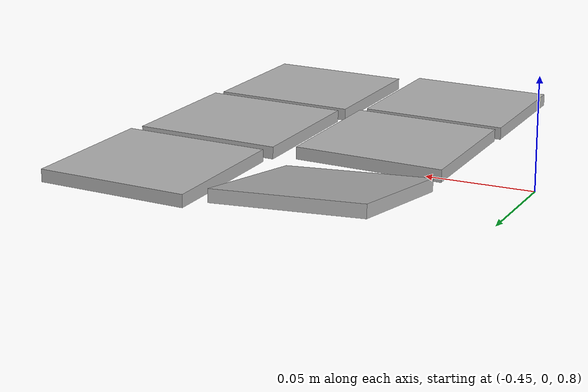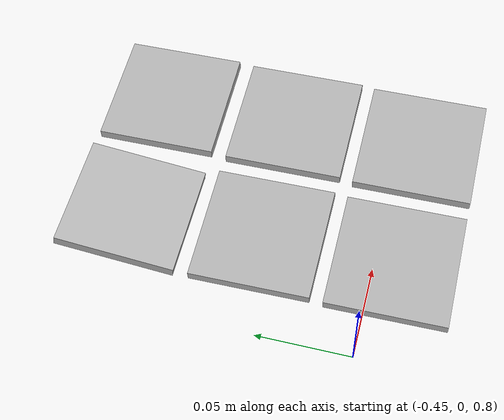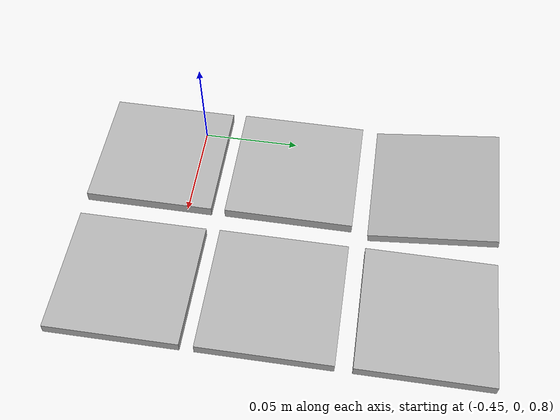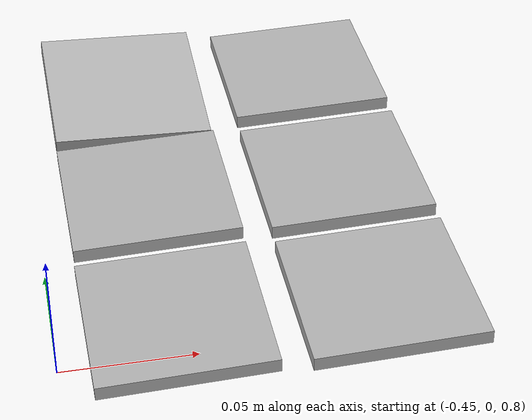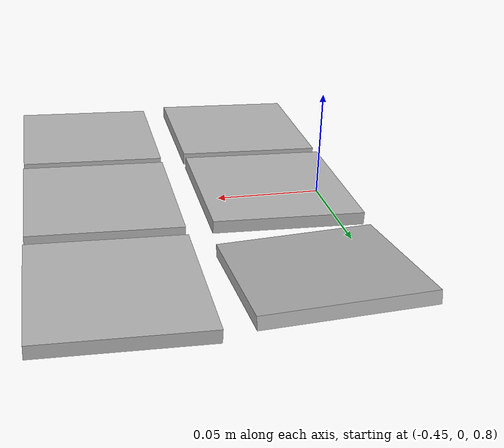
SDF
<sdf version="1.6">
 <world name="default">
  <gravity>0 0 0</gravity>
  <light name="sun" type="directional">
   <pose>0 0 10 0 -0 0</pose>
   <diffuse>0.8 0.8 0.8 1</diffuse>
   <specular>0.1 0.1 0.1 1</specular>
   <attenuation>
    <range>1000</range>
    <constant>0.9</constant>
    <linear>0.01</linear>
    <quadratic>0.001</quadratic>
   </attenuation>
   <direction>-0.5 0.5 -1</direction>
  </light>
  <magnetic_field>6e-06 2.3e-05 -4.2e-05</magnetic_field>
  <atmosphere type="adiabatic"/>
  <physics name="default_physics" default="0" type="ode">
   <max_step_size>0.001</max_step_size>
   <real_time_factor>1</real_time_factor>
   <real_time_update_rate>1000</real_time_update_rate>
  </physics>
  <scene><ambient>0.4 0.4 0.4 1</ambient><background>0.7 0.7 0.7 1</background><shadows>1</shadows></scene>
  <spherical_coordinates>
   <surface_model>EARTH_WGS84</surface_model>
   <latitude_deg>0</latitude_deg>
   <longitude_deg>0</longitude_deg>
   <elevation>0</elevation>
   <heading_deg>0</heading_deg>
  </spherical_coordinates>
  <model name="aruco_box">
   <link name="link">
    <pose>0 0 0 0 -0 0.071264</pose>
    <inertial>
     <mass>1</mass>
     <inertia>
      <ixx>0.166667</ixx>
      <ixy>0</ixy>
      <ixz>0</ixz>
      <iyy>0.166667</iyy>
      <iyz>0</iyz>
      <izz>0.166667</izz>
     </inertia>
    </inertial>
    <visual name="visual">
     <geometry>
      <mesh><uri>model://new_ur_gazebo/marca_aruco/aruco.dae</uri><scale>0.5 0.5 0.5</scale></mesh>
     </geometry>
     <material>
      <script><name>my_material</name><uri>file://new_ur_gazebo/marca_aruco/my_material.material</uri></script>
      <shader type="pixel"><normal_map>__default__</normal_map></shader>
      <ambient>0.3 0.3 0.3 1</ambient>
      <diffuse>0.7 0.7 0.7 1</diffuse>
      <specular>0.01 0.01 0.01 1</specular>
      <emissive>0 0 0 1</emissive>
     </material>
    </visual>
    <collision name="collision">
     <geometry>
      <mesh><uri>model://new_ur_gazebo/marca_aruco/aruco.dae</uri><scale>0.5 0.5 0.5</scale></mesh>
     </geometry>
     <surface>
      <friction>
       <ode><mu>1</mu><mu2>1</mu2><fdir1>0 0 0</fdir1><slip1>0</slip1><slip2>0</slip2></ode>
       <torsional>
        <coefficient>1</coefficient>
        <patch_radius>0</patch_radius>
        <surface_radius>0</surface_radius>
        <use_patch_radius>1</use_patch_radius>
        <ode><slip>0</slip></ode>
       </torsional>
      </friction>
      <bounce><restitution_coefficient>0</restitution_coefficient><threshold>1e+06</threshold></bounce>
      <contact>
       <collide_without_contact>0</collide_without_contact>
       <collide_without_contact_bitmask>1</collide_without_contact_bitmask>
       <collide_bitmask>1</collide_bitmask>
       <ode>
        <soft_cfm>0</soft_cfm>
        <soft_erp>0.2</soft_erp>
        <kp>1e+13</kp>
        <kd>1</kd>
        <max_vel>0.01</max_vel>
        <min_depth>0</min_depth>
       </ode>
       <bullet>
        <split_impulse>1</split_impulse>
        <split_impulse_penetration_threshold>-0.01</split_impulse_penetration_threshold>
        <soft_cfm>0</soft_cfm>
        <soft_erp>0.2</soft_erp>
        <kp>1e+13</kp>
        <kd>1</kd>
       </bullet>
      </contact>
     </surface>
    </collision>
   </link>
   <static>1</static>
   <pose>-0.409897 0.122878 0.83 0.185721 -1.441246 -1.754106</pose>
  </model>
  <model name="aruco_box_10">
   <link name="link">
    <pose>0 0 0 0 -0 0.071264</pose>
    <inertial>
     <mass>1</mass>
     <inertia>
      <ixx>0.166667</ixx>
      <ixy>0</ixy>
      <ixz>0</ixz>
      <iyy>0.166667</iyy>
      <iyz>0</iyz>
      <izz>0.166667</izz>
     </inertia>
    </inertial>
    <visual name="visual">
     <geometry>
      <mesh><uri>model://new_ur_gazebo/marca_aruco/marcaAruco_10.dae</uri><scale>0.5 0.5 0.5</scale></mesh>
     </geometry>
     <material>
      <script>
       <name>my_material_10</name>
       <uri>file://new_ur_gazebo/marca_aruco/my_material_10.material</uri>
      </script>
      <shader type="pixel"><normal_map>__default__</normal_map></shader>
      <ambient>0.3 0.3 0.3 1</ambient>
      <diffuse>0.7 0.7 0.7 1</diffuse>
      <specular>0.01 0.01 0.01 1</specular>
      <emissive>0 0 0 1</emissive>
     </material>
    </visual>
    <collision name="collision">
     <geometry>
      <mesh><uri>model://new_ur_gazebo/marca_aruco/marcaAruco_10.dae</uri><scale>0.5 0.5 0.5</scale></mesh>
     </geometry>
     <surface>
      <friction>
       <ode><mu>1</mu><mu2>1</mu2><fdir1>0 0 0</fdir1><slip1>0</slip1><slip2>0</slip2></ode>
       <torsional>
        <coefficient>1</coefficient>
        <patch_radius>0</patch_radius>
        <surface_radius>0</surface_radius>
        <use_patch_radius>1</use_patch_radius>
        <ode><slip>0</slip></ode>
       </torsional>
      </friction>
      <bounce><restitution_coefficient>0</restitution_coefficient><threshold>1e+06</threshold></bounce>
      <contact>
       <collide_without_contact>0</collide_without_contact>
       <collide_without_contact_bitmask>1</collide_without_contact_bitmask>
       <collide_bitmask>1</collide_bitmask>
       <ode>
        <soft_cfm>0</soft_cfm>
        <soft_erp>0.2</soft_erp>
        <kp>1e+13</kp>
        <kd>1</kd>
        <max_vel>0.01</max_vel>
        <min_depth>0</min_depth>
       </ode>
       <bullet>
        <split_impulse>1</split_impulse>
        <split_impulse_penetration_threshold>-0.01</split_impulse_penetration_threshold>
        <soft_cfm>0</soft_cfm>
        <soft_erp>0.2</soft_erp>
        <kp>1e+13</kp>
        <kd>1</kd>
       </bullet>
      </contact>
     </surface>
    </collision>
   </link>
   <static>1</static>
   <pose>-0.409897 0.055237 0.83 1.982423 -1.509728 -1.976447</pose>
  </model>
  <model name="aruco_box_17">
   <link name="link">
    <pose>0 0 0 0 -0 0.071264</pose>
    <inertial>
     <mass>1</mass>
     <inertia>
      <ixx>0.166667</ixx>
      <ixy>0</ixy>
      <ixz>0</ixz>
      <iyy>0.166667</iyy>
      <iyz>0</iyz>
      <izz>0.166667</izz>
     </inertia>
    </inertial>
    <visual name="visual">
     <geometry>
      <mesh><uri>model://new_ur_gazebo/marca_aruco/marcaAruco_17.dae</uri><scale>0.5 0.5 0.5</scale></mesh>
     </geometry>
     <material>
      <script>
       <name>my_material_17</name>
       <uri>file://new_ur_gazebo/marca_aruco/my_material_17.material</uri>
      </script>
      <shader type="pixel"><normal_map>__default__</normal_map></shader>
      <ambient>0.3 0.3 0.3 1</ambient>
      <diffuse>0.7 0.7 0.7 1</diffuse>
      <specular>0.01 0.01 0.01 1</specular>
      <emissive>0 0 0 1</emissive>
     </material>
    </visual>
    <collision name="collision">
     <geometry>
      <mesh><uri>model://new_ur_gazebo/marca_aruco/marcaAruco_17.dae</uri><scale>0.5 0.5 0.5</scale></mesh>
     </geometry>
     <surface>
      <friction>
       <ode><mu>1</mu><mu2>1</mu2><fdir1>0 0 0</fdir1><slip1>0</slip1><slip2>0</slip2></ode>
       <torsional>
        <coefficient>1</coefficient>
        <patch_radius>0</patch_radius>
        <surface_radius>0</surface_radius>
        <use_patch_radius>1</use_patch_radius>
        <ode><slip>0</slip></ode>
       </torsional>
      </friction>
      <bounce><restitution_coefficient>0</restitution_coefficient><threshold>1e+06</threshold></bounce>
      <contact>
       <collide_without_contact>0</collide_without_contact>
       <collide_without_contact_bitmask>1</collide_without_contact_bitmask>
       <collide_bitmask>1</collide_bitmask>
       <ode>
        <soft_cfm>0</soft_cfm>
        <soft_erp>0.2</soft_erp>
        <kp>1e+13</kp>
        <kd>1</kd>
        <max_vel>0.01</max_vel>
        <min_depth>0</min_depth>
       </ode>
       <bullet>
        <split_impulse>1</split_impulse>
        <split_impulse_penetration_threshold>-0.01</split_impulse_penetration_threshold>
        <soft_cfm>0</soft_cfm>
        <soft_erp>0.2</soft_erp>
        <kp>1e+13</kp>
        <kd>1</kd>
       </bullet>
      </contact>
     </surface>
    </collision>
   </link>
   <static>1</static>
   <pose>-0.339497 0.122878 0.83 1.982423 -1.509728 -1.976447</pose>
  </model>
  <model name="aruco_box_200">
   <link name="link">
    <pose>0 0 0 0 -0 0.071264</pose>
    <inertial>
     <mass>1</mass>
     <inertia>
      <ixx>0.166667</ixx>
      <ixy>0</ixy>
      <ixz>0</ixz>
      <iyy>0.166667</iyy>
      <iyz>0</iyz>
      <izz>0.166667</izz>
     </inertia>
    </inertial>
    <visual name="visual">
     <geometry>
      <mesh><uri>model://new_ur_gazebo/marca_aruco/marcaAruco_200.dae</uri><scale>0.5 0.5 0.5</scale></mesh>
     </geometry>
     <material>
      <script>
       <name>my_material_200</name>
       <uri>file://new_ur_gazebo/marca_aruco/my_material_200.material</uri>
      </script>
      <shader type="pixel"><normal_map>__default__</normal_map></shader>
      <ambient>0.3 0.3 0.3 1</ambient>
      <diffuse>0.7 0.7 0.7 1</diffuse>
      <specular>0.01 0.01 0.01 1</specular>
      <emissive>0 0 0 1</emissive>
     </material>
    </visual>
    <collision name="collision">
     <geometry>
      <mesh><uri>model://new_ur_gazebo/marca_aruco/marcaAruco_200.dae</uri><scale>0.5 0.5 0.5</scale></mesh>
     </geometry>
     <surface>
      <friction>
       <ode><mu>1</mu><mu2>1</mu2><fdir1>0 0 0</fdir1><slip1>0</slip1><slip2>0</slip2></ode>
       <torsional>
        <coefficient>1</coefficient>
        <patch_radius>0</patch_radius>
        <surface_radius>0</surface_radius>
        <use_patch_radius>1</use_patch_radius>
        <ode><slip>0</slip></ode>
       </torsional>
      </friction>
      <bounce><restitution_coefficient>0</restitution_coefficient><threshold>1e+06</threshold></bounce>
      <contact>
       <collide_without_contact>0</collide_without_contact>
       <collide_without_contact_bitmask>1</collide_without_contact_bitmask>
       <collide_bitmask>1</collide_bitmask>
       <ode>
        <soft_cfm>0</soft_cfm>
        <soft_erp>0.2</soft_erp>
        <kp>1e+13</kp>
        <kd>1</kd>
        <max_vel>0.01</max_vel>
        <min_depth>0</min_depth>
       </ode>
       <bullet>
        <split_impulse>1</split_impulse>
        <split_impulse_penetration_threshold>-0.01</split_impulse_penetration_threshold>
        <soft_cfm>0</soft_cfm>
        <soft_erp>0.2</soft_erp>
        <kp>1e+13</kp>
        <kd>1</kd>
       </bullet>
      </contact>
     </surface>
    </collision>
   </link>
   <static>1</static>
   <pose>-0.339497 0.055237 0.83 1.982423 -1.509728 -1.976447</pose>
  </model>
  <model name="aruco_box_26">
   <link name="link">
    <pose>0 0 0 0 -0 0.071264</pose>
    <inertial>
     <mass>1</mass>
     <inertia>
      <ixx>0.166667</ixx>
      <ixy>0</ixy>
      <ixz>0</ixz>
      <iyy>0.166667</iyy>
      <iyz>0</iyz>
      <izz>0.166667</izz>
     </inertia>
    </inertial>
    <visual name="visual">
     <geometry>
      <mesh><uri>model://new_ur_gazebo/marca_aruco/marcaAruco_26.dae</uri><scale>0.5 0.5 0.5</scale></mesh>
     </geometry>
     <material>
      <script>
       <name>my_material_26</name>
       <uri>file://new_ur_gazebo/marca_aruco/my_material_26.material</uri>
      </script>
      <shader type="pixel"><normal_map>__default__</normal_map></shader>
      <ambient>0.3 0.3 0.3 1</ambient>
      <diffuse>0.7 0.7 0.7 1</diffuse>
      <specular>0.01 0.01 0.01 1</specular>
      <emissive>0 0 0 1</emissive>
     </material>
    </visual>
    <collision name="collision">
     <geometry>
      <mesh><uri>model://new_ur_gazebo/marca_aruco/marcaAruco_26.dae</uri><scale>0.5 0.5 0.5</scale></mesh>
     </geometry>
     <surface>
      <friction>
       <ode><mu>1</mu><mu2>1</mu2><fdir1>0 0 0</fdir1><slip1>0</slip1><slip2>0</slip2></ode>
       <torsional>
        <coefficient>1</coefficient>
        <patch_radius>0</patch_radius>
        <surface_radius>0</surface_radius>
        <use_patch_radius>1</use_patch_radius>
        <ode><slip>0</slip></ode>
       </torsional>
      </friction>
      <bounce><restitution_coefficient>0</restitution_coefficient><threshold>1e+06</threshold></bounce>
      <contact>
       <collide_without_contact>0</collide_without_contact>
       <collide_without_contact_bitmask>1</collide_without_contact_bitmask>
       <collide_bitmask>1</collide_bitmask>
       <ode>
        <soft_cfm>0</soft_cfm>
        <soft_erp>0.2</soft_erp>
        <kp>1e+13</kp>
        <kd>1</kd>
        <max_vel>0.01</max_vel>
        <min_depth>0</min_depth>
       </ode>
       <bullet>
        <split_impulse>1</split_impulse>
        <split_impulse_penetration_threshold>-0.01</split_impulse_penetration_threshold>
        <soft_cfm>0</soft_cfm>
        <soft_erp>0.2</soft_erp>
        <kp>1e+13</kp>
        <kd>1</kd>
       </bullet>
      </contact>
     </surface>
    </collision>
   </link>
   <static>1</static>
   <pose>-0.339497 -0.011324 0.83 1.982423 -1.509728 -1.976447</pose>
  </model>
  <model name="aruco_box_91">
   <link name="link">
    <pose>0 0 0 0 -0 0.071264</pose>
    <inertial>
     <mass>1</mass>
     <inertia>
      <ixx>0.166667</ixx>
      <ixy>0</ixy>
      <ixz>0</ixz>
      <iyy>0.166667</iyy>
      <iyz>0</iyz>
      <izz>0.166667</izz>
     </inertia>
    </inertial>
    <visual name="visual">
     <geometry>
      <mesh><uri>model://new_ur_gazebo/marca_aruco/marcaAruco_91.dae</uri><scale>0.5 0.5 0.5</scale></mesh>
     </geometry>
     <material>
      <script>
       <name>my_material_91</name>
       <uri>file://new_ur_gazebo/marca_aruco/my_material_91.material</uri>
      </script>
      <shader type="pixel"><normal_map>__default__</normal_map></shader>
      <ambient>0.3 0.3 0.3 1</ambient>
      <diffuse>0.7 0.7 0.7 1</diffuse>
      <specular>0.01 0.01 0.01 1</specular>
      <emissive>0 0 0 1</emissive>
     </material>
    </visual>
    <collision name="collision">
     <geometry>
      <mesh><uri>model://new_ur_gazebo/marca_aruco/marcaAruco_91.dae</uri><scale>0.5 0.5 0.5</scale></mesh>
     </geometry>
     <surface>
      <friction>
       <ode><mu>1</mu><mu2>1</mu2><fdir1>0 0 0</fdir1><slip1>0</slip1><slip2>0</slip2></ode>
       <torsional>
        <coefficient>1</coefficient>
        <patch_radius>0</patch_radius>
        <surface_radius>0</surface_radius>
        <use_patch_radius>1</use_patch_radius>
        <ode><slip>0</slip></ode>
       </torsional>
      </friction>
      <bounce><restitution_coefficient>0</restitution_coefficient><threshold>1e+06</threshold></bounce>
      <contact>
       <collide_without_contact>0</collide_without_contact>
       <collide_without_contact_bitmask>1</collide_without_contact_bitmask>
       <collide_bitmask>1</collide_bitmask>
       <ode>
        <soft_cfm>0</soft_cfm>
        <soft_erp>0.2</soft_erp>
        <kp>1e+13</kp>
        <kd>1</kd>
        <max_vel>0.01</max_vel>
        <min_depth>0</min_depth>
       </ode>
       <bullet>
        <split_impulse>1</split_impulse>
        <split_impulse_penetration_threshold>-0.01</split_impulse_penetration_threshold>
        <soft_cfm>0</soft_cfm>
        <soft_erp>0.2</soft_erp>
        <kp>1e+13</kp>
        <kd>1</kd>
       </bullet>
      </contact>
     </surface>
    </collision>
   </link>
   <static>1</static>
   <pose>-0.409897 -0.011324 0.83 1.982423 -1.509728 -1.976447</pose>
  </model>
 </world>
</sdf>
